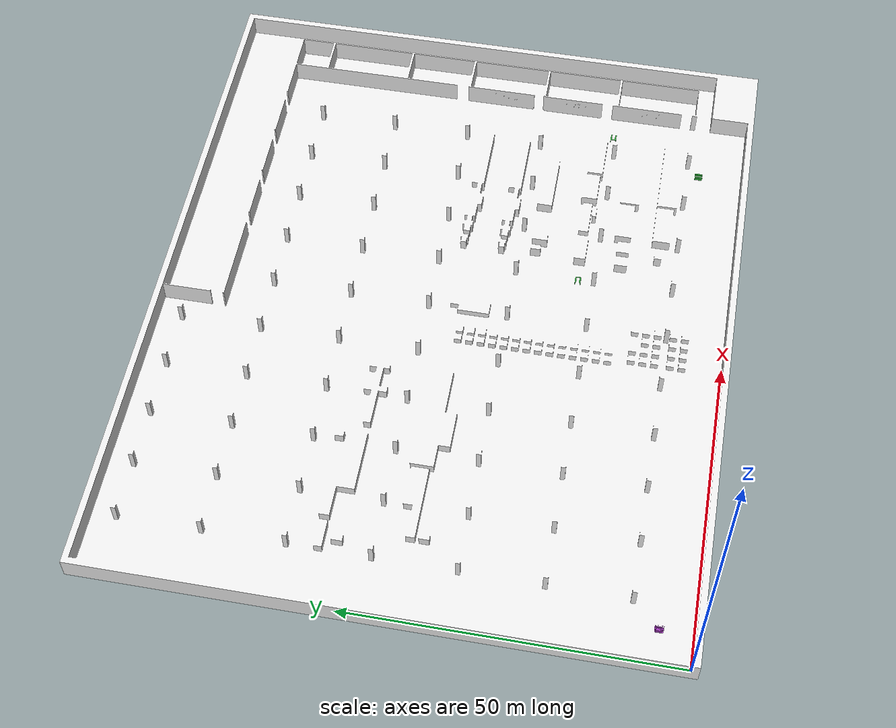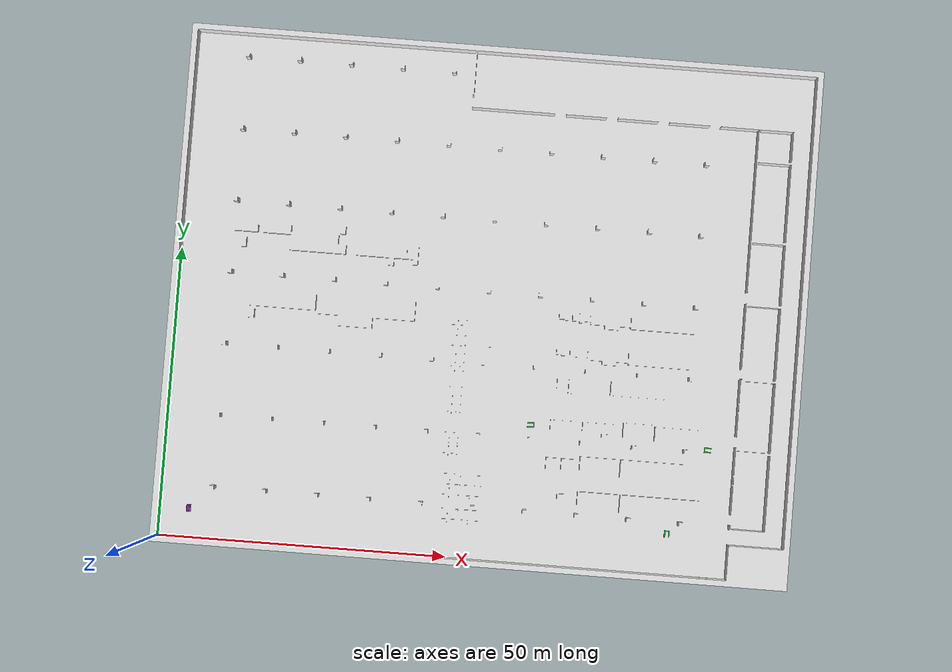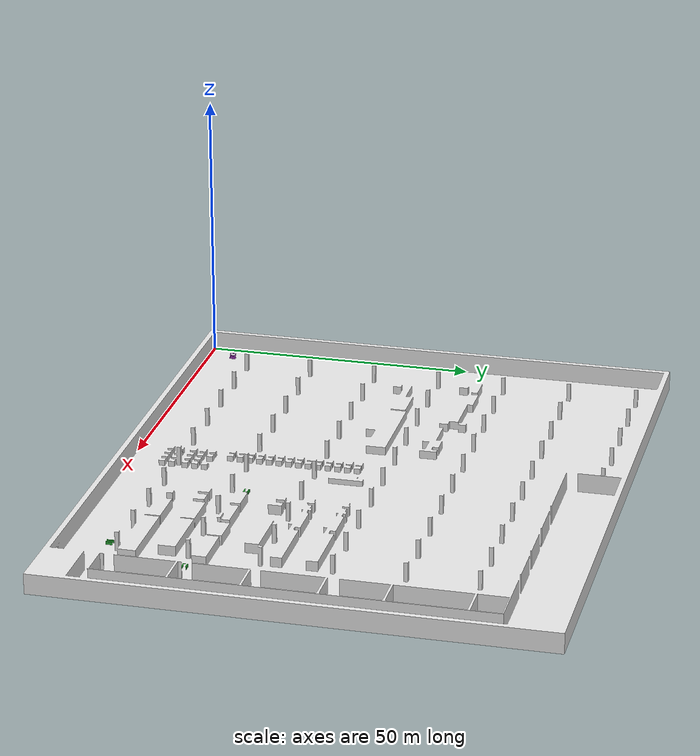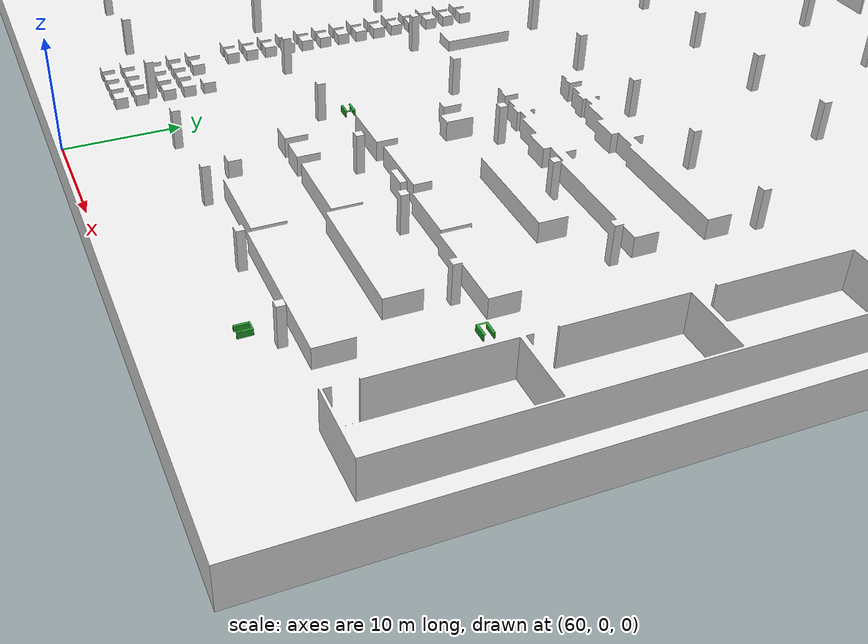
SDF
<sdf version="1.4">
 <world name="default">
  <include><uri>model://sun</uri></include>
  <physics type="ode">
   <max_step_size>0.01</max_step_size>
   <real_time_factor>1</real_time_factor>
   <real_time_update_rate>100</real_time_update_rate>
   <gravity>0 0 -9.8</gravity>
  </physics>
  <model name="enviroment">
   <pose>54 44 0 0 0 0</pose>
   <static>true</static>
   <link name="enviroment">
    <visual name="visual">
     <geometry>
      <mesh>
       <uri>/home/robotics/TungNV/ros_gazebo_ws/src/ros_gazebo/ros_gazebo/meshes/Led_Lighting.stl</uri>
       <scale>0.001 0.001 0.001</scale>
      </mesh>
     </geometry>
     <material><script><name>Gazebo/White</name></script></material>
    </visual>
    <collision name="collision">
     <geometry>
      <mesh>
       <uri>/home/robotics/TungNV/ros_gazebo_ws/src/ros_gazebo/ros_gazebo/meshes/Led_Lighting.stl</uri>
       <scale>0.001 0.001 0.001</scale>
      </mesh>
     </geometry>
    </collision>
   </link>
  </model>
  <model name="pallet2">
   <pose>5 5 0.55 0 0 0</pose>
   <static>false</static>
   <link name="pallet2">
    <visual name="visual">
     <geometry>
      <mesh>
       <uri>/home/robotics/TungNV/ros_gazebo_ws/src/ros_gazebo/ros_gazebo/meshes/AMR_Pallet2.stl</uri>
       <scale>0.001 0.001 0.001</scale>
      </mesh>
     </geometry>
     <material><script><name>Gazebo/Purple</name></script></material>
    </visual>
    <collision name="collision">
     <geometry>
      <mesh>
       <uri>/home/robotics/TungNV/ros_gazebo_ws/src/ros_gazebo/ros_gazebo/meshes/AMR_Pallet2.stl</uri>
       <scale>0.001 0.001 0.001</scale>
      </mesh>
     </geometry>
    </collision>
   </link>
  </model>
  <model name="station1">
   <pose>88 7 0 1.57 0 0</pose>
   <static>true</static>
   <link name="station1">
    <visual name="visual">
     <geometry>
      <mesh>
       <uri>/home/robotics/TungNV/ros_gazebo_ws/src/ros_gazebo/ros_gazebo/meshes/AMR_Station.stl</uri>
       <scale>0.001 0.001 0.001</scale>
      </mesh>
     </geometry>
     <material><script><name>Gazebo/Green</name></script></material>
    </visual>
    <collision name="collision">
     <geometry>
      <mesh>
       <uri>/home/robotics/TungNV/ros_gazebo_ws/src/ros_gazebo/ros_gazebo/meshes/AMR_Station.stl</uri>
       <scale>0.001 0.001 0.001</scale>
      </mesh>
     </geometry>
    </collision>
   </link>
  </model>
  <model name="station2">
   <pose>94 22 0 1.57 0 1.57</pose>
   <static>true</static>
   <link name="station2">
    <visual name="visual">
     <geometry>
      <mesh>
       <uri>/home/robotics/TungNV/ros_gazebo_ws/src/ros_gazebo/ros_gazebo/meshes/AMR_Station.stl</uri>
       <scale>0.001 0.001 0.001</scale>
      </mesh>
     </geometry>
     <material><script><name>Gazebo/Green</name></script></material>
    </visual>
    <collision name="collision">
     <geometry>
      <mesh>
       <uri>/home/robotics/TungNV/ros_gazebo_ws/src/ros_gazebo/ros_gazebo/meshes/AMR_Station.stl</uri>
       <scale>0.001 0.001 0.001</scale>
      </mesh>
     </geometry>
    </collision>
   </link>
  </model>
  <model name="station3">
   <pose>63 24 0 1.57 0 -1.57</pose>
   <static>true</static>
   <link name="station3">
    <visual name="visual">
     <geometry>
      <mesh>
       <uri>/home/robotics/TungNV/ros_gazebo_ws/src/ros_gazebo/ros_gazebo/meshes/AMR_Station.stl</uri>
       <scale>0.001 0.001 0.001</scale>
      </mesh>
     </geometry>
     <material><script><name>Gazebo/Green</name></script></material>
    </visual>
    <collision name="collision">
     <geometry>
      <mesh>
       <uri>/home/robotics/TungNV/ros_gazebo_ws/src/ros_gazebo/ros_gazebo/meshes/AMR_Station.stl</uri>
       <scale>0.001 0.001 0.001</scale>
      </mesh>
     </geometry>
    </collision>
   </link>
  </model>
 </world>
</sdf>
